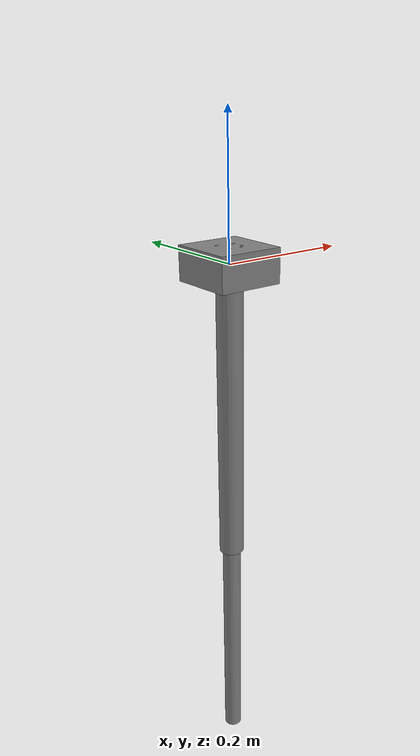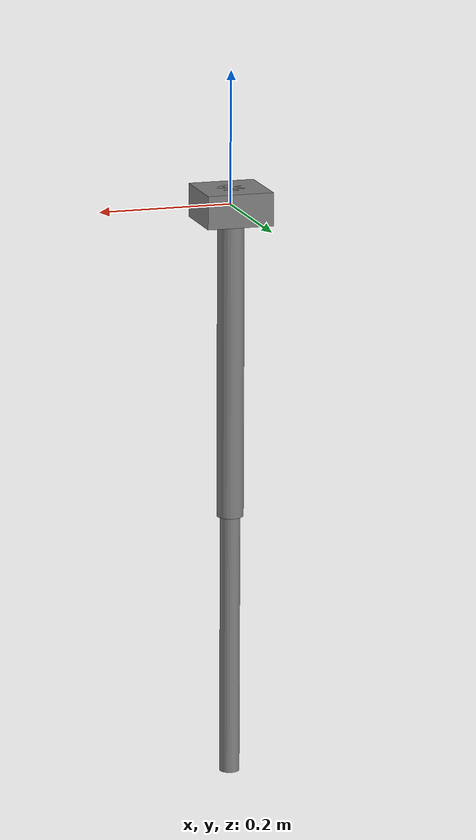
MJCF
<mujoco model="two_link_arm">
  <compiler angle="radian"/>

  <worldbody>
    <geom size="0.05 0.05 0.025" type="box" contype="0" conaffinity="0" group="1" density="0"/>
    <body name="link1" pos="0 0 0.025">
      <inertial pos="0 0 -0.25" mass="1" diaginertia="0.02 0.02 0.001"/>
      <joint name="joint1" range="-3.14 3.14" actuatorfrcrange="-10 10" axis="0 1 0"/>
      <geom size="0.02 0.25" pos="0 0 -0.25" type="cylinder" contype="0" conaffinity="0" group="1" density="0"/>
      <geom size="0.02 0.25" pos="0 0 -0.25" type="cylinder"/>
      <body name="link2" pos="0 0 -0.5">
        <inertial pos="0 0 -0.2" mass="0.5" diaginertia="0.007 0.007 0.001"/>
        <joint name="joint2" range="-3.14 3.14" actuatorfrcrange="-10 10" axis="0 1 0"/>
        <geom size="0.015 0.2" pos="0 0 -0.2" type="cylinder" contype="0" conaffinity="0" group="1" density="0"/>
        <geom size="0.015 0.2" pos="0 0 -0.2" type="cylinder"/>
      </body>
    </body>
  </worldbody>
</mujoco>
